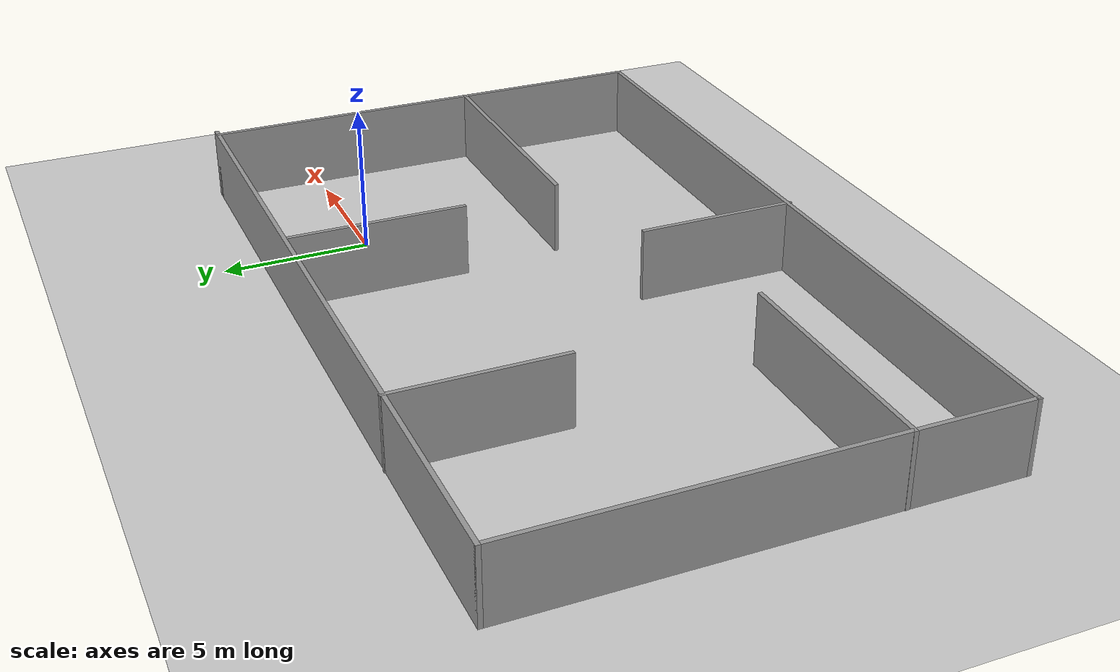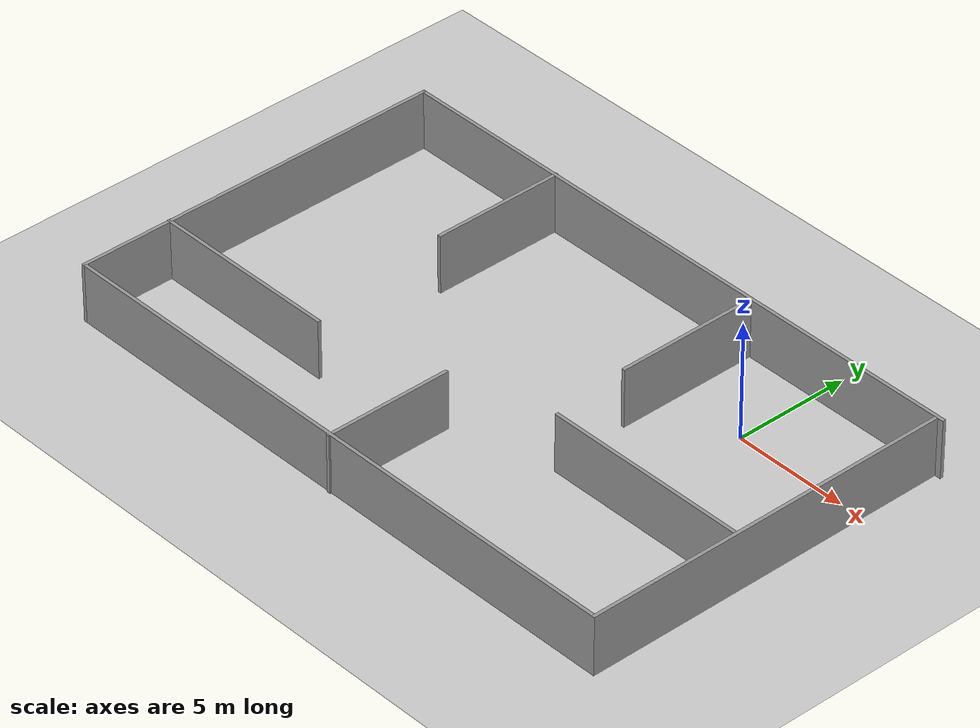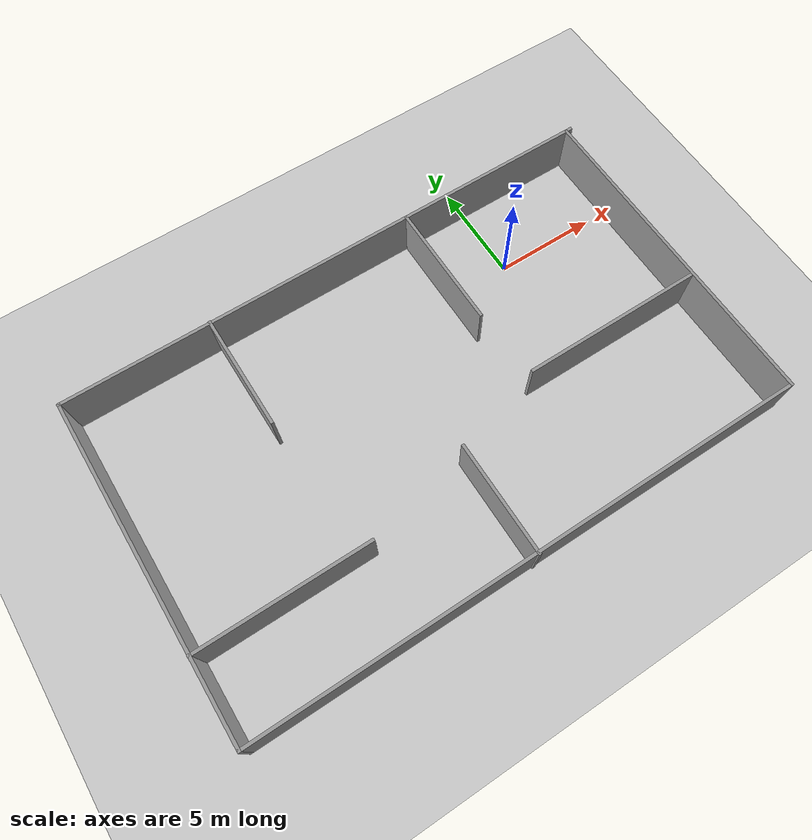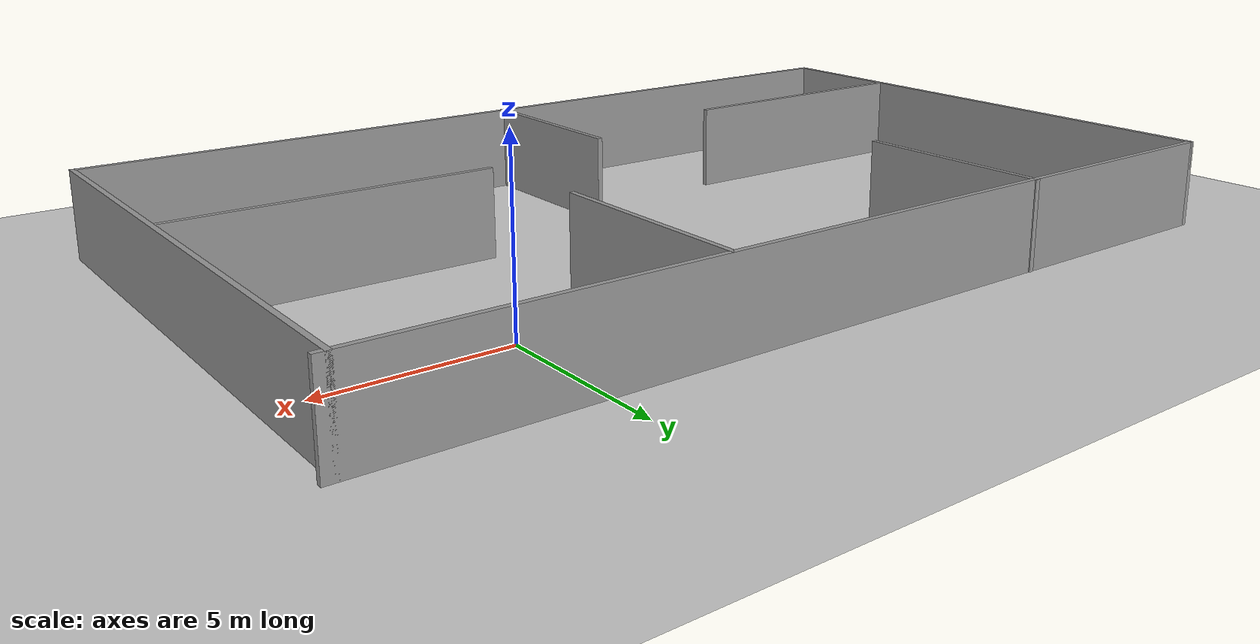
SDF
<sdf version="1.7">
 <world name="default">
  <light name="sun" type="directional">
   <pose>0 0 10 0 -0 0</pose>
   <diffuse>0.8 0.8 0.8 1</diffuse>
   <specular>0.2 0.2 0.2 1</specular>
   <attenuation>
    <range>1000</range>
    <constant>0.9</constant>
    <linear>0.01</linear>
    <quadratic>0.001</quadratic>
   </attenuation>
   <direction>-0.5 0.1 -0.9</direction>
   <spot><inner_angle>0</inner_angle><outer_angle>0</outer_angle><falloff>0</falloff></spot>
  </light>
  <model name="ground_plane">
   <static>1</static>
   <link name="link">
    <collision name="collision">
     <geometry><plane><normal>0 0 1</normal><size>100 100</size></plane></geometry>
     <surface><friction><ode><mu>100</mu><mu2>50</mu2></ode></friction></surface>
    </collision>
    <visual name="visual">
     <cast_shadows>0</cast_shadows>
     <geometry><plane><normal>0 0 1</normal><size>100 100</size></plane></geometry>
     <material>
      <script><uri>file://media/materials/scripts/gazebo.material</uri><name>Gazebo/Grey</name></script>
     </material>
    </visual>
   </link>
  </model>
  <gravity>0 0 -9.8</gravity>
  <magnetic_field>6e-06 2.3e-05 -4.2e-05</magnetic_field>
  <atmosphere type="adiabatic"/>
  <physics type="ode">
   <max_step_size>0.001</max_step_size>
   <real_time_factor>1</real_time_factor>
   <real_time_update_rate>1000</real_time_update_rate>
  </physics>
  <scene><ambient>0.4 0.4 0.4 1</ambient><background>0.7 0.7 0.7 1</background><shadows>1</shadows></scene>
  <spherical_coordinates>
   <surface_model>EARTH_WGS84</surface_model>
   <latitude_deg>0</latitude_deg>
   <longitude_deg>0</longitude_deg>
   <elevation>0</elevation>
   <heading_deg>0</heading_deg>
  </spherical_coordinates>
  <model name="gmapping_test">
   <pose>-7.22937 -4.45364 0 0 -0 0</pose>
   <link name="Wall_29">
    <collision name="Wall_29_Collision">
     <geometry><box><size>16.25 0.15 2.5</size></box></geometry>
     <pose>0 0 1.25 0 -0 0</pose>
    </collision>
    <visual name="Wall_29_Visual">
     <pose>0 0 1.25 0 -0 0</pose>
     <geometry><box><size>16.25 0.15 2.5</size></box></geometry>
     <material>
      <script><uri>file://media/materials/scripts/gazebo.material</uri><name>Gazebo/Grey</name></script>
      <ambient>1 1 1 1</ambient>
     </material>
     <meta><layer>0</layer></meta>
    </visual>
    <pose>13.1807 0.01629 0 0 -0 -1.5708</pose>
   </link>
   <link name="Wall_30">
    <collision name="Wall_30_Collision">
     <geometry><box><size>26.75 0.15 2.5</size></box></geometry>
     <pose>0 0 1.25 0 -0 0</pose>
    </collision>
    <visual name="Wall_30_Visual">
     <pose>0 0 1.25 0 -0 0</pose>
     <geometry><box><size>26.75 0.15 2.5</size></box></geometry>
     <material>
      <script><uri>file://media/materials/scripts/gazebo.material</uri><name>Gazebo/Grey</name></script>
      <ambient>1 1 1 1</ambient>
     </material>
     <meta><layer>0</layer></meta>
    </visual>
    <pose>-0.119347 -8.03371 0 0 -0 3.14159</pose>
   </link>
   <link name="Wall_31">
    <collision name="Wall_31_Collision">
     <geometry><box><size>16.25 0.15 2.5</size></box></geometry>
     <pose>0 0 1.25 0 -0 0</pose>
    </collision>
    <visual name="Wall_31_Visual">
     <pose>0 0 1.25 0 -0 0</pose>
     <geometry><box><size>16.25 0.15 2.5</size></box></geometry>
     <material>
      <script><uri>file://media/materials/scripts/gazebo.material</uri><name>Gazebo/Grey</name></script>
      <ambient>1 1 1 1</ambient>
     </material>
     <meta><layer>0</layer></meta>
    </visual>
    <pose>-13.4193 0.01629 0 0 -0 1.5708</pose>
   </link>
   <link name="Wall_32">
    <collision name="Wall_32_Collision">
     <geometry><box><size>27 0.15 2.5</size></box></geometry>
     <pose>0 0 1.25 0 -0 0</pose>
    </collision>
    <visual name="Wall_32_Visual">
     <pose>0 0 1.25 0 -0 0</pose>
     <geometry><box><size>27 0.15 2.5</size></box></geometry>
     <material>
      <script><uri>file://media/materials/scripts/gazebo.material</uri><name>Gazebo/Grey</name></script>
      <ambient>1 1 1 1</ambient>
     </material>
     <meta><layer>0</layer></meta>
    </visual>
    <pose>0.005653 8.06629 0 0 -0 0</pose>
   </link>
   <link name="Wall_36">
    <collision name="Wall_36_Collision">
     <geometry><box><size>5.75 0.15 2.5</size></box></geometry>
     <pose>0 0 1.25 0 -0 0</pose>
    </collision>
    <visual name="Wall_36_Visual">
     <pose>0 0 1.25 0 -0 0</pose>
     <geometry><box><size>5.75 0.15 2.5</size></box></geometry>
     <material>
      <script><uri>file://media/materials/scripts/gazebo.material</uri><name>Gazebo/Grey</name></script>
      <ambient>1 1 1 1</ambient>
     </material>
     <meta><layer>0</layer></meta>
    </visual>
    <pose>-6.25236 5.2965 0 0 -0 1.5708</pose>
   </link>
   <link name="Wall_39">
    <collision name="Wall_39_Collision">
     <geometry><box><size>8.25 0.15 2.5</size></box></geometry>
     <pose>0 0 1.25 0 -0 0</pose>
    </collision>
    <visual name="Wall_39_Visual">
     <pose>0 0 1.25 0 -0 0</pose>
     <geometry><box><size>8.25 0.15 2.5</size></box></geometry>
     <material>
      <script><uri>file://media/materials/scripts/gazebo.material</uri><name>Gazebo/Grey</name></script>
      <ambient>1 1 1 1</ambient>
     </material>
     <meta><layer>0</layer></meta>
    </visual>
    <pose>-9.38065 -4.08381 0 0 -0 0</pose>
   </link>
   <link name="Wall_41">
    <collision name="Wall_41_Collision">
     <geometry><box><size>9 0.15 2.5</size></box></geometry>
     <pose>0 0 1.25 0 -0 0</pose>
    </collision>
    <visual name="Wall_41_Visual">
     <pose>0 0 1.25 0 -0 0</pose>
     <geometry><box><size>9 0.15 2.5</size></box></geometry>
     <material>
      <script><uri>file://media/materials/scripts/gazebo.material</uri><name>Gazebo/Grey</name></script>
      <ambient>1 1 1 1</ambient>
     </material>
     <meta><layer>0</layer></meta>
    </visual>
    <pose>8.73509 -1.51569 0 0 -0 3.14159</pose>
   </link>
   <link name="Wall_44">
    <collision name="Wall_44_Collision">
     <geometry><box><size>6.25 0.15 2.5</size></box></geometry>
     <pose>0 0 1.25 0 -0 0</pose>
    </collision>
    <visual name="Wall_44_Visual">
     <pose>0 0 1.25 0 -0 0</pose>
     <geometry><box><size>6.25 0.15 2.5</size></box></geometry>
     <material>
      <script><uri>file://media/materials/scripts/gazebo.material</uri><name>Gazebo/Grey</name></script>
      <ambient>1 1 1 1</ambient>
     </material>
     <meta><layer>0</layer></meta>
    </visual>
    <pose>3.95766 5.01126 0 0 -0 -1.5708</pose>
   </link>
   <link name="Wall_47">
    <collision name="Wall_47_Collision">
     <geometry><box><size>5.5 0.15 2.5</size></box></geometry>
     <pose>0 0 1.25 0 -0 0</pose>
    </collision>
    <visual name="Wall_47_Visual">
     <pose>0 0 1.25 0 -0 0</pose>
     <geometry><box><size>5.5 0.15 2.5</size></box></geometry>
     <material>
      <script><uri>file://media/materials/scripts/gazebo.material</uri><name>Gazebo/Grey</name></script>
      <ambient>1 1 1 1</ambient>
     </material>
     <meta><layer>0</layer></meta>
    </visual>
    <pose>-0.10853 -5.4215 0 0 -0 1.5708</pose>
   </link>
   <static>1</static>
  </model>
 </world>
</sdf>
